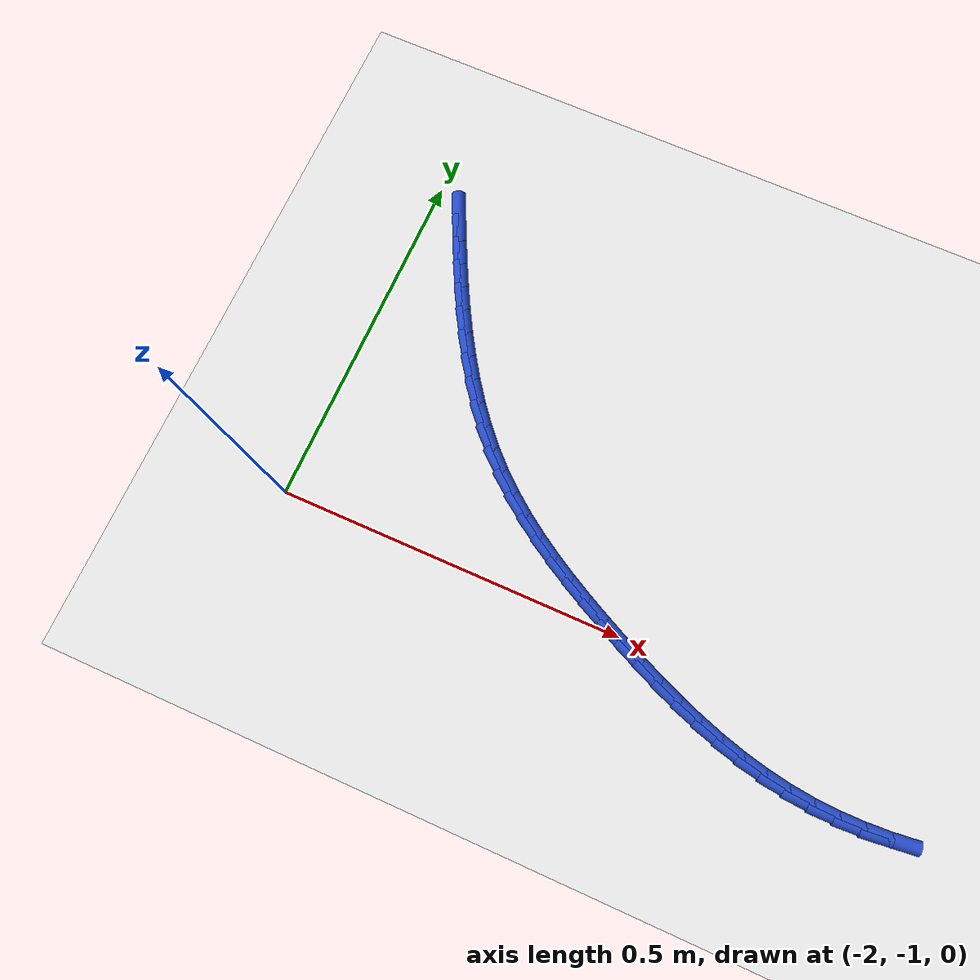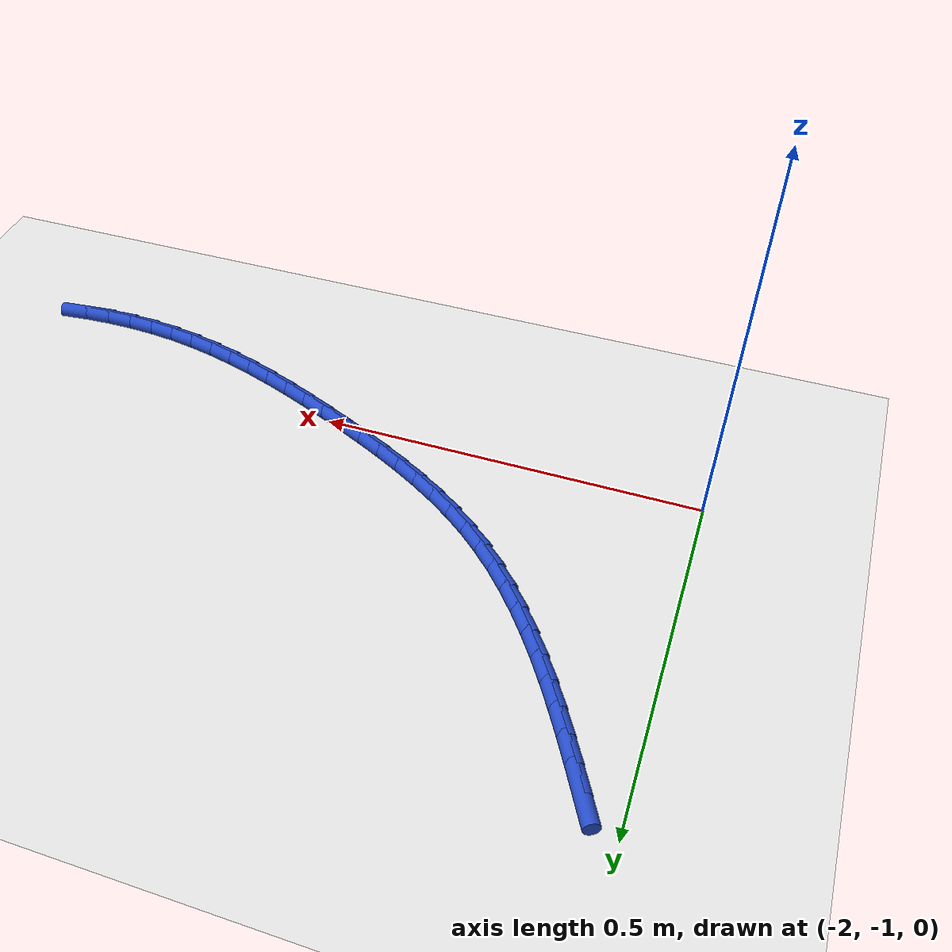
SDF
<sdf version="1.6">
 <world name="default">
  <model name="ground_plane">
   <static>1</static>
   <link name="link">
    <collision name="collision">
     <geometry><plane><normal>0 0 1</normal><size>100 100</size></plane></geometry>
     <surface><friction><ode><mu>100</mu><mu2>50</mu2></ode></friction></surface>
    </collision>
    <visual name="visual">
     <cast_shadows>0</cast_shadows>
     <geometry><plane><normal>0 0 1</normal><size>100 100</size></plane></geometry>
     <material>
      <script><uri>file://media/materials/scripts/gazebo.material</uri><name>Gazebo/WhiteGlow</name></script>
     </material>
    </visual>
   </link>
  </model>
  <model name="line">
   <link name="link_112">
    <pose>-1.9537932331109678 -0.5344723543067563 0.01 0 1.57 -1.1090708714474495</pose>
    <collision name="collision">
     <geometry><cylinder><radius>0.01</radius><length>0.08</length></cylinder></geometry>
    </collision>
    <visual name="visual">
     <material>
      <script><name>Gazebo/Blue</name><uri>file://media/materials/scripts/gazebo.material</uri></script>
     </material>
     <geometry><cylinder><radius>0.01</radius><length>0.08</length></cylinder></geometry>
    </visual>
   </link>
   <link name="link_113">
    <pose>-1.937754279989863 -0.56670500227598 0.01 0 1.57 -1.0976247592206017</pose>
    <collision name="collision">
     <geometry><cylinder><radius>0.01</radius><length>0.08</length></cylinder></geometry>
    </collision>
    <visual name="visual">
     <material>
      <script><name>Gazebo/Blue</name><uri>file://media/materials/scripts/gazebo.material</uri></script>
     </material>
     <geometry><cylinder><radius>0.01</radius><length>0.08</length></cylinder></geometry>
    </visual>
   </link>
   <link name="link_114">
    <pose>-1.9213083427480706 -0.5988283404141923 0.01 0 1.57 -1.0814899224492884</pose>
    <collision name="collision">
     <geometry><cylinder><radius>0.01</radius><length>0.08</length></cylinder></geometry>
    </collision>
    <visual name="visual">
     <material>
      <script><name>Gazebo/Blue</name><uri>file://media/materials/scripts/gazebo.material</uri></script>
     </material>
     <geometry><cylinder><radius>0.01</radius><length>0.08</length></cylinder></geometry>
    </visual>
   </link>
   <link name="link_115">
    <pose>-1.9043427776410118 -0.6306887031451827 0.01 0 1.57 -1.0605658219618876</pose>
    <collision name="collision">
     <geometry><cylinder><radius>0.01</radius><length>0.08</length></cylinder></geometry>
    </collision>
    <visual name="visual">
     <material>
      <script><name>Gazebo/Blue</name><uri>file://media/materials/scripts/gazebo.material</uri></script>
     </material>
     <geometry><cylinder><radius>0.01</radius><length>0.08</length></cylinder></geometry>
    </visual>
   </link>
   <link name="link_116">
    <pose>-1.8867449409241077 -0.6621324248927394 0.01 0 1.57 -1.0347058606775503</pose>
    <collision name="collision">
     <geometry><cylinder><radius>0.01</radius><length>0.08</length></cylinder></geometry>
    </collision>
    <visual name="visual">
     <material>
      <script><name>Gazebo/Blue</name><uri>file://media/materials/scripts/gazebo.material</uri></script>
     </material>
     <geometry><cylinder><radius>0.01</radius><length>0.08</length></cylinder></geometry>
    </visual>
   </link>
   <link name="link_117">
    <pose>-1.8684021888527804 -0.693005840080652 0.01 0 1.57 -1.0037295428385564</pose>
    <collision name="collision">
     <geometry><cylinder><radius>0.01</radius><length>0.08</length></cylinder></geometry>
    </collision>
    <visual name="visual">
     <material>
      <script><name>Gazebo/Blue</name><uri>file://media/materials/scripts/gazebo.material</uri></script>
     </material>
     <geometry><cylinder><radius>0.01</radius><length>0.08</length></cylinder></geometry>
    </visual>
   </link>
   <link name="link_118">
    <pose>-1.8492018776824526 -0.7231552831327092 0.01 0 1.57 -0.9674392342822672</pose>
    <collision name="collision">
     <geometry><cylinder><radius>0.01</radius><length>0.08</length></cylinder></geometry>
    </collision>
    <visual name="visual">
     <material>
      <script><name>Gazebo/Blue</name><uri>file://media/materials/scripts/gazebo.material</uri></script>
     </material>
     <geometry><cylinder><radius>0.01</radius><length>0.08</length></cylinder></geometry>
    </visual>
   </link>
   <link name="link_119">
    <pose>-1.8290313636685425 -0.7524270884727006 0.01 0 1.57 -0.9256432683921947</pose>
    <collision name="collision">
     <geometry><cylinder><radius>0.01</radius><length>0.08</length></cylinder></geometry>
    </collision>
    <visual name="visual">
     <material>
      <script><name>Gazebo/Blue</name><uri>file://media/materials/scripts/gazebo.material</uri></script>
     </material>
     <geometry><cylinder><radius>0.01</radius><length>0.08</length></cylinder></geometry>
    </visual>
   </link>
   <link name="link_120">
    <pose>-1.807778003066474 -0.7806675905244147 0.01 0 1.57 -0.8781869924907619</pose>
    <collision name="collision">
     <geometry><cylinder><radius>0.01</radius><length>0.08</length></cylinder></geometry>
    </collision>
    <visual name="visual">
     <material>
      <script><name>Gazebo/Blue</name><uri>file://media/materials/scripts/gazebo.material</uri></script>
     </material>
     <geometry><cylinder><radius>0.01</radius><length>0.08</length></cylinder></geometry>
    </visual>
   </link>
   <link name="link_121">
    <pose>-1.785329152131668 -0.8077231237116412 0.01 0 1.57 -0.8249925772867667</pose>
    <collision name="collision">
     <geometry><cylinder><radius>0.01</radius><length>0.08</length></cylinder></geometry>
    </collision>
    <visual name="visual">
     <material>
      <script><name>Gazebo/Blue</name><uri>file://media/materials/scripts/gazebo.material</uri></script>
     </material>
     <geometry><cylinder><radius>0.01</radius><length>0.08</length></cylinder></geometry>
    </visual>
   </link>
   <link name="link_122">
    <pose>-1.7615721671195455 -0.833440022458168 0.01 0 1.57 -0.7661066593591597</pose>
    <collision name="collision">
     <geometry><cylinder><radius>0.01</radius><length>0.08</length></cylinder></geometry>
    </collision>
    <visual name="visual">
     <material>
      <script><name>Gazebo/Blue</name><uri>file://media/materials/scripts/gazebo.material</uri></script>
     </material>
     <geometry><cylinder><radius>0.01</radius><length>0.08</length></cylinder></geometry>
    </visual>
   </link>
   <link name="link_123">
    <pose>-1.7363944042855284 -0.8576646211877849 0.01 0 1.57 -0.7036130317592312</pose>
    <collision name="collision">
     <geometry><cylinder><radius>0.01</radius><length>0.08</length></cylinder></geometry>
    </collision>
    <visual name="visual">
     <material>
      <script><name>Gazebo/Blue</name><uri>file://media/materials/scripts/gazebo.material</uri></script>
     </material>
     <geometry><cylinder><radius>0.01</radius><length>0.08</length></cylinder></geometry>
    </visual>
   </link>
   <link name="link_124">
    <pose>-1.7097274613022342 -0.8802910838188615 0.01 0 1.57 -0.6459238176580997</pose>
    <collision name="collision">
     <geometry><cylinder><radius>0.01</radius><length>0.08</length></cylinder></geometry>
    </collision>
    <visual name="visual">
     <material>
      <script><name>Gazebo/Blue</name><uri>file://media/materials/scripts/gazebo.material</uri></script>
     </material>
     <geometry><cylinder><radius>0.01</radius><length>0.08</length></cylinder></geometry>
    </visual>
   </link>
   <link name="link_125">
    <pose>-1.6816952857429563 -0.901421524175418 0.01 0 1.57 -0.5953635968045562</pose>
    <collision name="collision">
     <geometry><cylinder><radius>0.01</radius><length>0.08</length></cylinder></geometry>
    </collision>
    <visual name="visual">
     <material>
      <script><name>Gazebo/Blue</name><uri>file://media/materials/scripts/gazebo.material</uri></script>
     </material>
     <geometry><cylinder><radius>0.01</radius><length>0.08</length></cylinder></geometry>
    </visual>
   </link>
   <link name="link_126">
    <pose>-1.652474087280862 -0.9212145567539507 0.01 0 1.57 -0.5518635604594221</pose>
    <collision name="collision">
     <geometry><cylinder><radius>0.01</radius><length>0.08</length></cylinder></geometry>
    </collision>
    <visual name="visual">
     <material>
      <script><name>Gazebo/Blue</name><uri>file://media/materials/scripts/gazebo.material</uri></script>
     </material>
     <geometry><cylinder><radius>0.01</radius><length>0.08</length></cylinder></geometry>
    </visual>
   </link>
   <link name="link_127">
    <pose>-1.6222400766205975 -0.9398287971660867 0.01 0 1.57 -0.5152415955705227</pose>
    <collision name="collision">
     <geometry><cylinder><radius>0.01</radius><length>0.08</length></cylinder></geometry>
    </collision>
    <visual name="visual">
     <material>
      <script><name>Gazebo/Blue</name><uri>file://media/materials/scripts/gazebo.material</uri></script>
     </material>
     <geometry><cylinder><radius>0.01</radius><length>0.08</length></cylinder></geometry>
    </visual>
   </link>
   <link name="link_128">
    <pose>-1.591169464466809 -0.957422861023454 0.01 0 1.57 -0.48526670430023827</pose>
    <collision name="collision">
     <geometry><cylinder><radius>0.01</radius><length>0.08</length></cylinder></geometry>
    </collision>
    <visual name="visual">
     <material>
      <script><name>Gazebo/Blue</name><uri>file://media/materials/scripts/gazebo.material</uri></script>
     </material>
     <geometry><cylinder><radius>0.01</radius><length>0.08</length></cylinder></geometry>
    </visual>
   </link>
   <link name="link_129">
    <pose>-1.5594384615241441 -0.974155363937681 0.01 0 1.57 -0.4617079145705211</pose>
    <collision name="collision">
     <geometry><cylinder><radius>0.01</radius><length>0.08</length></cylinder></geometry>
    </collision>
    <visual name="visual">
     <material>
      <script><name>Gazebo/Blue</name><uri>file://media/materials/scripts/gazebo.material</uri></script>
     </material>
     <geometry><cylinder><radius>0.01</radius><length>0.08</length></cylinder></geometry>
    </visual>
   </link>
   <link name="link_130">
    <pose>-1.5272232784972473 -0.9901849215203946 0.01 0 1.57 -0.4442434927053829</pose>
    <collision name="collision">
     <geometry><cylinder><radius>0.01</radius><length>0.08</length></cylinder></geometry>
    </collision>
    <visual name="visual">
     <material>
      <script><name>Gazebo/Blue</name><uri>file://media/materials/scripts/gazebo.material</uri></script>
     </material>
     <geometry><cylinder><radius>0.01</radius><length>0.08</length></cylinder></geometry>
    </visual>
   </link>
   <link name="link_131">
    <pose>-1.494697912932977 -1.00566618017854 0.01 0 1.57 -0.42811389270785566</pose>
    <collision name="collision">
     <geometry><cylinder><radius>0.01</radius><length>0.08</length></cylinder></geometry>
    </collision>
    <visual name="visual">
     <material>
      <script><name>Gazebo/Blue</name><uri>file://media/materials/scripts/gazebo.material</uri></script>
     </material>
     <geometry><cylinder><radius>0.01</radius><length>0.08</length></cylinder></geometry>
    </visual>
   </link>
   <link name="link_132">
    <pose>-1.461955097993785 -1.0206080420902581 0.01 0 1.57 -0.4073662045899034</pose>
    <collision name="collision">
     <geometry><cylinder><radius>0.01</radius><length>0.08</length></cylinder></geometry>
    </collision>
    <visual name="visual">
     <material>
      <script><name>Gazebo/Blue</name><uri>file://media/materials/scripts/gazebo.material</uri></script>
     </material>
     <geometry><cylinder><radius>0.01</radius><length>0.08</length></cylinder></geometry>
    </visual>
   </link>
   <link name="link_133">
    <pose>-1.428984682186697 -1.0348348901652515 0.01 0 1.57 -0.3815037952314326</pose>
    <collision name="collision">
     <geometry><cylinder><radius>0.01</radius><length>0.08</length></cylinder></geometry>
    </collision>
    <visual name="visual">
     <material>
      <script><name>Gazebo/Blue</name><uri>file://media/materials/scripts/gazebo.material</uri></script>
     </material>
     <geometry><cylinder><radius>0.01</radius><length>0.08</length></cylinder></geometry>
    </visual>
   </link>
   <link name="link_134">
    <pose>-1.3957699012346958 -1.0481592475653416 0.01 0 1.57 -0.35038819204689503</pose>
    <collision name="collision">
     <geometry><cylinder><radius>0.01</radius><length>0.08</length></cylinder></geometry>
    </collision>
    <visual name="visual">
     <material>
      <script><name>Gazebo/Blue</name><uri>file://media/materials/scripts/gazebo.material</uri></script>
     </material>
     <geometry><cylinder><radius>0.01</radius><length>0.08</length></cylinder></geometry>
    </visual>
   </link>
   <link name="link_135">
    <pose>-1.3622939908607627 -1.0603936374523477 0.01 0 1.57 -0.31388241889313073</pose>
    <collision name="collision">
     <geometry><cylinder><radius>0.01</radius><length>0.08</length></cylinder></geometry>
    </collision>
    <visual name="visual">
     <material>
      <script><name>Gazebo/Blue</name><uri>file://media/materials/scripts/gazebo.material</uri></script>
     </material>
     <geometry><cylinder><radius>0.01</radius><length>0.08</length></cylinder></geometry>
    </visual>
   </link>
   <link name="link_136">
    <pose>-1.32854018678788 -1.0713505829880905 0.01 0 1.57 -0.27187687857296855</pose>
    <collision name="collision">
     <geometry><cylinder><radius>0.01</radius><length>0.08</length></cylinder></geometry>
    </collision>
    <visual name="visual">
     <material>
      <script><name>Gazebo/Blue</name><uri>file://media/materials/scripts/gazebo.material</uri></script>
     </material>
     <geometry><cylinder><radius>0.01</radius><length>0.08</length></cylinder></geometry>
    </visual>
   </link>
   <link name="link_137">
    <pose>-1.29449172473903 -1.080842607334391 0.01 0 1.57 -0.22432221070124067</pose>
    <collision name="collision">
     <geometry><cylinder><radius>0.01</radius><length>0.08</length></cylinder></geometry>
    </collision>
    <visual name="visual">
     <material>
      <script><name>Gazebo/Blue</name><uri>file://media/materials/scripts/gazebo.material</uri></script>
     </material>
     <geometry><cylinder><radius>0.01</radius><length>0.08</length></cylinder></geometry>
    </visual>
   </link>
   <link name="link_138">
    <pose>-1.260131840437195 -1.0886822336530702 0.01 0 1.57 -0.17126847700226103</pose>
    <collision name="collision">
     <geometry><cylinder><radius>0.01</radius><length>0.08</length></cylinder></geometry>
    </collision>
    <visual name="visual">
     <material>
      <script><name>Gazebo/Blue</name><uri>file://media/materials/scripts/gazebo.material</uri></script>
     </material>
     <geometry><cylinder><radius>0.01</radius><length>0.08</length></cylinder></geometry>
    </visual>
   </link>
   <link name="link_139">
    <pose>-1.2254437696053575 -1.0946819851059475 0.01 0 1.57 -0.11302842352202874</pose>
    <collision name="collision">
     <geometry><cylinder><radius>0.01</radius><length>0.08</length></cylinder></geometry>
    </collision>
    <visual name="visual">
     <material>
      <script><name>Gazebo/Blue</name><uri>file://media/materials/scripts/gazebo.material</uri></script>
     </material>
     <geometry><cylinder><radius>0.01</radius><length>0.08</length></cylinder></geometry>
    </visual>
   </link>
   <link name="link_140">
    <pose>-1.19041254664952 -1.0986584571568028 0.01 0 1.57 -0.05341590894806574</pose>
    <collision name="collision">
     <geometry><cylinder><radius>0.01</radius><length>0.08</length></cylinder></geometry>
    </collision>
    <visual name="visual">
     <material>
      <script><name>Gazebo/Blue</name><uri>file://media/materials/scripts/gazebo.material</uri></script>
     </material>
     <geometry><cylinder><radius>0.01</radius><length>0.08</length></cylinder></geometry>
    </visual>
   </link>
   <link name="link_141">
    <pose>-1.155076006377539 -1.1005477878332006 0.01 0 1.57 0.003536308424023887</pose>
    <collision name="collision">
     <geometry><cylinder><radius>0.01</radius><length>0.08</length></cylinder></geometry>
    </collision>
    <visual name="visual">
     <material>
      <script><name>Gazebo/Blue</name><uri>file://media/materials/scripts/gazebo.material</uri></script>
     </material>
     <geometry><cylinder><radius>0.01</radius><length>0.08</length></cylinder></geometry>
    </visual>
   </link>
   <link name="link_142">
    <pose>-1.1195320431991924 -1.100422092892831 0.01 0 1.57 0.05775378997066677</pose>
    <collision name="collision">
     <geometry><cylinder><radius>0.01</radius><length>0.08</length></cylinder></geometry>
    </collision>
    <visual name="visual">
     <material>
      <script><name>Gazebo/Blue</name><uri>file://media/materials/scripts/gazebo.material</uri></script>
     </material>
     <geometry><cylinder><radius>0.01</radius><length>0.08</length></cylinder></geometry>
    </visual>
   </link>
   <link name="link_143">
    <pose>-1.0838818096038574 -1.0983608645370222 0.01 0 1.57 0.10942598290560797</pose>
    <collision name="collision">
     <geometry><cylinder><radius>0.01</radius><length>0.08</length></cylinder></geometry>
    </collision>
    <visual name="visual">
     <material>
      <script><name>Gazebo/Blue</name><uri>file://media/materials/scripts/gazebo.material</uri></script>
     </material>
     <geometry><cylinder><radius>0.01</radius><length>0.08</length></cylinder></geometry>
    </visual>
   </link>
  </model>
 </world>
</sdf>
